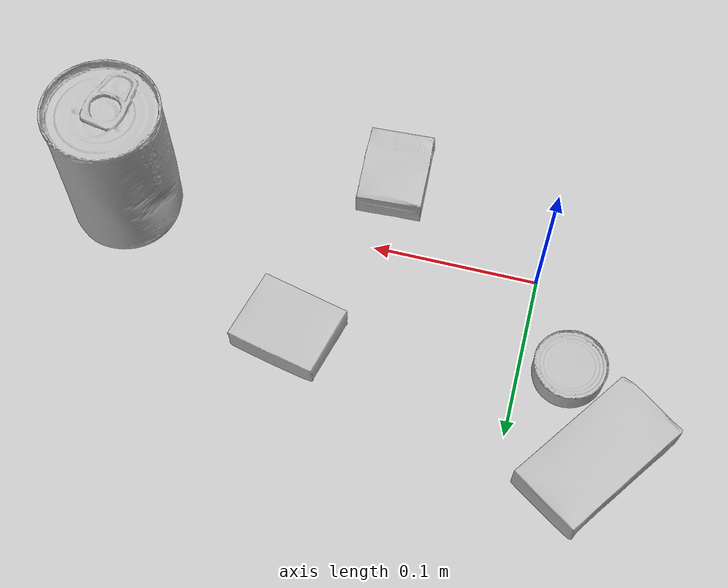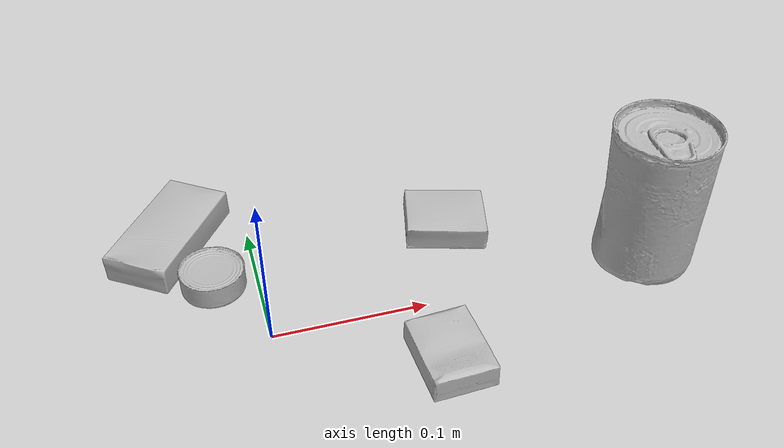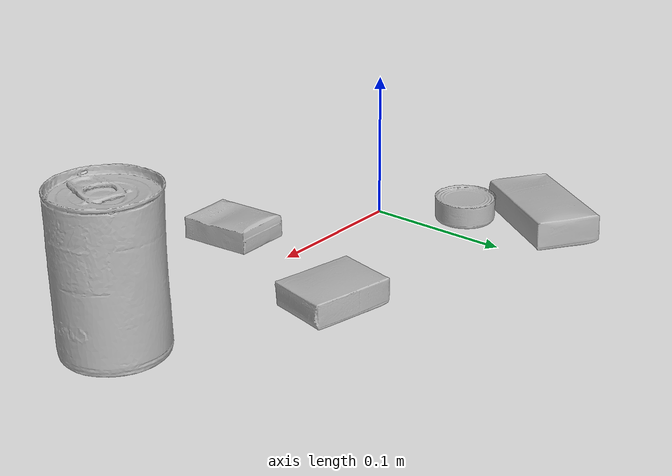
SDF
<sdf version="1.4">
  <world name="default">
    <light name="light1" type="point">
      <pose>0 0 1 0 0 0</pose>
      <diffuse>3 3 3 1</diffuse>
      <specular>3 3 3 1</specular>
    </light>
    <light name="light2" type="point">
      <pose>0 0.5 2 0 0 0</pose>
      <diffuse>1 1 1 1</diffuse>
      <specular>1 1 1 1</specular>
    </light>
    <light name="light3" type="point">
      <pose>0 0.5 2 0 0 0</pose>
      <diffuse>3 3 3 1</diffuse>
      <specular>3 3 3 1</specular>
    </light>
    <scene>
      <ambient>0.7 0.7 0.7</ambient>
    </scene>
    <model name="box1">
      <link name="link_box1">
        <collision name="default">
          <geometry>
            <mesh>
              <uri>model://cracker_box/collision_meshes/collision.obj</uri>
              <scale>0.25 0.25 0.25</scale>
            </mesh>
          </geometry>
          <surface>
            <friction>
              <ode>
                <mu>0.5</mu>
                <mu2>0.5</mu2>
              </ode>
            </friction>
          <contact>
        <ode>
            <max_vel>0</max_vel>
            <min_depth>0.0001</min_depth>
            <kp>1e8</kp>
        </ode>
    </contact></surface>
        </collision>
        <visual name="default">
          <geometry>
            <mesh>
              <uri>model://cracker_box/visual_meshes/visual.dae</uri>
              <scale>0.25 0.25 0.25</scale>
            </mesh>
          </geometry>
        </visual>
        <inertial>
          <mass>0.029061755165457726</mass>
          <pose>0.00023660456645302474 6.358561950037256e-05 -0.0004257383698131889 -0.0003162077745192934 -0.011106489600167671 0.002546795235645709</pose>
          <inertia>
            <ixx>4.620008e-06</ixx>
            <iyy>7.6285405e-06</iyy>
            <izz>1.0886628e-05</izz>
            <ixy>0</ixy>
            <ixz>0</ixz>
            <iyz>0</iyz>
          </inertia>
        </inertial>
      </link>
      <pose>0.09852190315723419 -0.04963812604546547 0.009096027351915836 -0.01405055776096696 -0.005016608742775089 1.6191345829229886</pose>
    </model>
    <model name="box2">
      <link name="link_box2">
        <collision name="default">
          <geometry>
            <mesh>
              <uri>model://sugar_box/collision_meshes/collision.obj</uri>
              <scale>0.5 0.5 0.5</scale>
            </mesh>
          </geometry>
          <surface>
            <friction>
              <ode>
                <mu>0.5</mu>
                <mu2>0.5</mu2>
              </ode>
            </friction>
          <contact>
        <ode>
            <max_vel>0</max_vel>
            <min_depth>0.0001</min_depth>
            <kp>1e8</kp>
        </ode>
    </contact></surface>
        </collision>
        <visual name="default">
          <geometry>
            <mesh>
              <uri>model://sugar_box/visual_meshes/visual.dae</uri>
              <scale>0.5 0.5 0.5</scale>
            </mesh>
          </geometry>
        </visual>
        <inertial>
          <mass>0.08909860998392105</mass>
          <pose>0.0005171863595023751 1.924554817378521e-05 -0.00018182402709499002 -0.00040462606756407727 0.0010506635218583888 0.002615378789044619</pose>
          <inertia>
            <ixx>1.8559176e-05</ixx>
            <iyy>5.9987076e-05</iyy>
            <izz>7.181169e-05</izz>
            <ixy>0</ixy>
            <ixz>0</ixz>
            <iyz>0</iyz>
          </inertia>
        </inertial>
      </link>
      <pose>-0.05183856189250946 0.10324130207300186 0.011399299837648869 0.000775419783600094 -0.02343328217843898 0.9583664151056069</pose>
    </model>
    <model name="box3">
      <link name="link_box3">
        <collision name="default">
          <geometry>
            <mesh>
              <uri>model://pudding_box/collision_meshes/collision.obj</uri>
              <scale>0.5 0.5 0.5</scale>
            </mesh>
          </geometry>
          <surface>
            <friction>
              <ode>
                <mu>0.5</mu>
                <mu2>0.5</mu2>
              </ode>
            </friction>
          <contact>
        <ode>
            <max_vel>0</max_vel>
            <min_depth>0.0001</min_depth>
            <kp>1e8</kp>
        </ode>
    </contact></surface>
        </collision>
        <visual name="default">
          <geometry>
            <mesh>
              <uri>model://pudding_box/visual_meshes/visual.dae</uri>
              <scale>0.5 0.5 0.5</scale>
            </mesh>
          </geometry>
        </visual>
        <inertial>
          <mass>0.058397307991981506</mass>
          <pose>0.00024474109522998333 0.000403394311433658 -0.0002594413817860186 0.005213099939270767 -0.006603797768571226 0.020079825168092046</pose>
          <inertia>
            <ixx>1.650379e-05</ixx>
            <iyy>1.1103868e-05</iyy>
            <izz>2.437216e-05</izz>
            <ixy>0</ixy>
            <ixz>0</ixz>
            <iyz>0</iyz>
          </inertia>
        </inertial>
      </link>
      <pose>0.13490639626979828 0.06835733354091644 0.009862898848950863 0.02234851533868491 -0.011391672399534137 1.3220768778865584</pose>
    </model>
    <model name="can1">
      <link name="link_can1">
        <collision name="default">
          <geometry>
            <mesh>
              <uri>model://tuna_fish_can/collision_meshes/collision.obj</uri>
              <scale>0.5 0.5 0.5</scale>
            </mesh>
          </geometry>
          <surface>
            <friction>
              <ode>
                <mu>0.5</mu>
                <mu2>0.5</mu2>
              </ode>
            </friction>
          <contact>
        <ode>
            <max_vel>0</max_vel>
            <min_depth>0.0001</min_depth>
            <kp>1e8</kp>
        </ode>
    </contact></surface>
        </collision>
        <visual name="default">
          <geometry>
            <mesh>
              <uri>model://tuna_fish_can/visual_meshes/visual.dae</uri>
              <scale>0.5 0.5 0.5</scale>
            </mesh>
          </geometry>
        </visual>
        <inertial>
          <mass>0.024247437715530396</mass>
          <pose>-2.0361860151751898e-05 -7.256063781824196e-06 -0.000526902440469712 -0.0017944785229743307 0.0001716120442354053 0.2405371667019961</pose>
          <inertia>
            <ixx>3.2782896e-06</ixx>
            <iyy>3.2646258e-06</iyy>
            <izz>5.609621e-06</izz>
            <ixy>0</ixy>
            <ixz>0</ixz>
            <iyz>0</iyz>
          </inertia>
        </inertial>
      </link>
      <pose>-0.028296057134866714 0.05440441519021988 0.008519995957612991 1.1607748944333923e-08 2.8950223906207836e-08 2.4509673990436274</pose>
    </model>
    <model name="can2">
      <link name="link_can2">
        <collision name="default">
          <geometry>
            <mesh>
              <uri>model://tomato_soup_can/collision_meshes/collision.obj</uri>
              <scale>1.0 1.0 1.0</scale>
            </mesh>
          </geometry>
          <surface>
            <friction>
              <ode>
                <mu>0.5</mu>
                <mu2>0.5</mu2>
              </ode>
            </friction>
          <contact>
        <ode>
            <max_vel>0</max_vel>
            <min_depth>0.0001</min_depth>
            <kp>1e8</kp>
        </ode>
    </contact></surface>
        </collision>
        <visual name="default">
          <geometry>
            <mesh>
              <uri>model://tomato_soup_can/visual_meshes/visual.dae</uri>
              <scale>1.0 1.0 1.0</scale>
            </mesh>
          </geometry>
        </visual>
        <inertial>
          <mass>0.44329848885536194</mass>
          <pose>0.0001265227037947625 0.00010805520287249237 -0.0017973989015445113 0.007020066893531886 0.00042299576578658417 -0.009903435969571123</pose>
          <inertia>
            <ixx>0.00048603912</ixx>
            <iyy>0.0004832301</iyy>
            <izz>0.00025190957</izz>
            <ixy>0</ixy>
            <ixz>0</ixz>
            <iyz>0</iyz>
          </inertia>
        </inertial>
      </link>
      <pose>0.25421634316444397 0.006373773328959942 0.05127401277422905 -3.5331609506143425e-07 -3.9399091777064295e-07 -0.4767826972603894</pose>
    </model>
  <physics type="ode">
      <max_contacts>50</max_contacts>
      <ode>
        <solver>
          <type>quick</type>
          <iters>75</iters>
        </solver>
        <constraints>
          <contact_max_correcting_vel>0</contact_max_correcting_vel>
          <contact_surface_layer>0</contact_surface_layer>
        </constraints>
      </ode>
    </physics></world>
</sdf>
